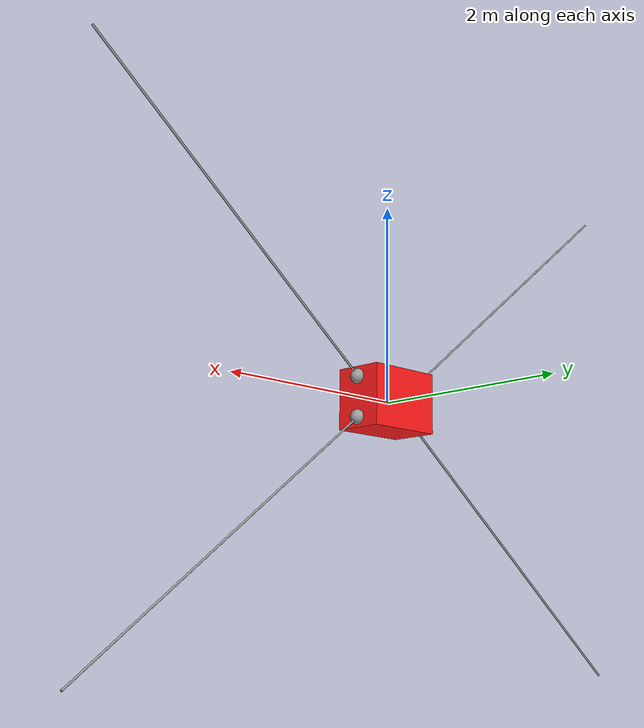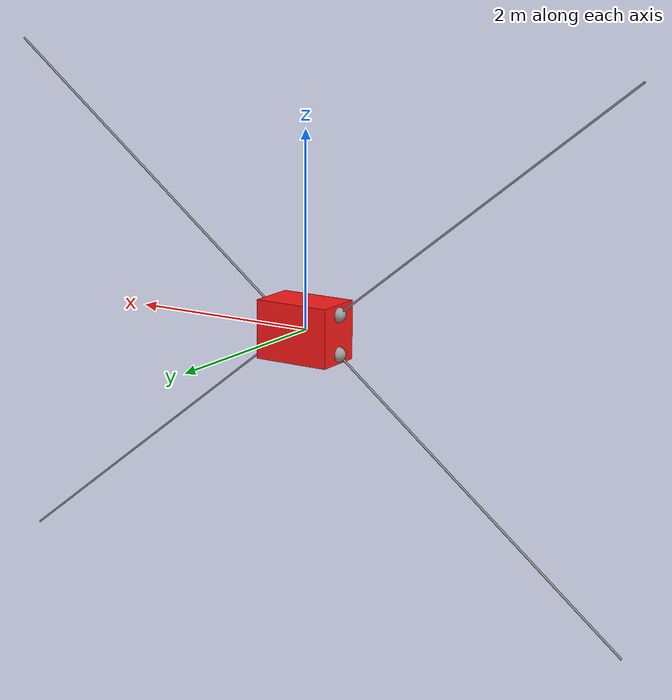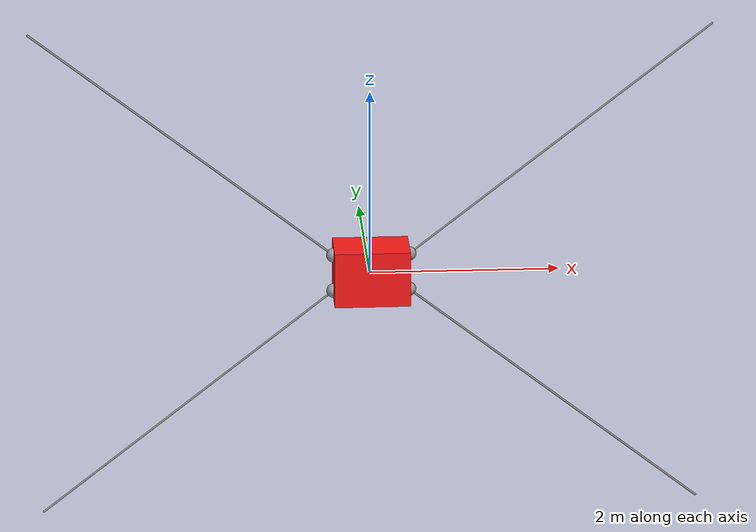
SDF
<?xml version='1.0'?>
<sdf version='1.7'>
  <model name='Wallbot_V3_Robot'>
    <link name='link_0'>
      <inertial>
        <mass>1</mass>
        <inertia>
          <ixx>0.166667</ixx>
          <ixy>0</ixy>
          <ixz>0</ixz>
          <iyy>0.166667</iyy>
          <iyz>0</iyz>
          <izz>0.166667</izz>
        </inertia>
        <pose>0 0 0 0 -0 0</pose>
      </inertial>
      <pose>0.015 0 0.005 0 -0 0</pose>
      <gravity>0</gravity>
      <self_collide>0</self_collide>
      <kinematic>0</kinematic>
      <enable_wind>0</enable_wind>
      <visual name='visual'>
        <pose>0 0 0 0 -0 0</pose>
        <geometry>
          <box>
            <size>0.8 0.5 0.6</size>
          </box>
        </geometry>
        <material>
          <lighting>1</lighting>
          <script>
            <uri>file://media/materials/scripts/gazebo.material</uri>
            <name>Gazebo/Grey</name>
          </script>
          <shader type='pixel'>
            <normal_map>__default__</normal_map>
          </shader>
          <ambient>1 0.1 0.1 1</ambient>
          <diffuse>0.7 0.7 0.7 1</diffuse>
          <specular>0.01 0.01 0.01 1</specular>
          <emissive>0 0 0 1</emissive>
        </material>
        <transparency>0</transparency>
        <cast_shadows>1</cast_shadows>
      </visual>
      <collision name='collision'>
        <laser_retro>0</laser_retro>
        <max_contacts>10</max_contacts>
        <pose>0 0 0 0 -0 0</pose>
        <geometry>
          <box>
            <size>0.8 0.5 0.6</size>
          </box>
        </geometry>
        <surface>
          <friction>
            <ode>
              <mu>1</mu>
              <mu2>1</mu2>
              <fdir1>0 0 0</fdir1>
              <slip1>0</slip1>
              <slip2>0</slip2>
            </ode>
            <torsional>
              <coefficient>1</coefficient>
              <patch_radius>0</patch_radius>
              <surface_radius>0</surface_radius>
              <use_patch_radius>1</use_patch_radius>
              <ode>
                <slip>0</slip>
              </ode>
            </torsional>
          </friction>
          <bounce>
            <restitution_coefficient>0</restitution_coefficient>
            <threshold>1e+06</threshold>
          </bounce>
          <contact>
            <collide_without_contact>0</collide_without_contact>
            <collide_without_contact_bitmask>1</collide_without_contact_bitmask>
            <collide_bitmask>1</collide_bitmask>
            <ode>
              <soft_cfm>0</soft_cfm>
              <soft_erp>0.2</soft_erp>
              <kp>1e+13</kp>
              <kd>1</kd>
              <max_vel>0.01</max_vel>
              <min_depth>0</min_depth>
            </ode>
            <bullet>
              <split_impulse>1</split_impulse>
              <split_impulse_penetration_threshold>-0.01</split_impulse_penetration_threshold>
              <soft_cfm>0</soft_cfm>
              <soft_erp>0.2</soft_erp>
              <kp>1e+13</kp>
              <kd>1</kd>
            </bullet>
          </contact>
        </surface>
      </collision>
    </link>
    <link name='link_0_0'>
      <inertial>
        <mass>1</mass>
        <inertia>
          <ixx>0.145833</ixx>
          <ixy>0</ixy>
          <ixz>0</ixz>
          <iyy>0.145833</iyy>
          <iyz>0</iyz>
          <izz>0.125</izz>
        </inertia>
        <pose>0 0 -2 0 -0 0</pose>
      </inertial>
      <pose>0.415 0 0.205 3.14159 -0.901593 3.14159</pose>
      <gravity>0</gravity>
      <self_collide>0</self_collide>
      <kinematic>0</kinematic>
      <enable_wind>0</enable_wind>
      <visual name='visual'>
        <pose>0 0 -2 0 -0 0</pose>
        <geometry>
          <cylinder>
            <radius>0.01</radius>
            <length>4</length>
          </cylinder>
        </geometry>
        <material>
          <lighting>1</lighting>
          <script>
            <uri>file://media/materials/scripts/gazebo.material</uri>
            <name>Gazebo/Grey</name>
          </script>
          <shader type='pixel'>
            <normal_map>__default__</normal_map>
          </shader>
          <ambient>0.3 0.3 0.3 1</ambient>
          <diffuse>0.7 0.7 0.7 1</diffuse>
          <specular>0.01 0.01 0.01 1</specular>
          <emissive>0 0 0 1</emissive>
        </material>
        <transparency>0</transparency>
        <cast_shadows>1</cast_shadows>
      </visual>
      <collision name='collision'>
        <laser_retro>0</laser_retro>
        <max_contacts>10</max_contacts>
        <pose>0 0 -2 0 -0 0</pose>
        <geometry>
          <cylinder>
            <radius>0.01</radius>
            <length>4</length>
          </cylinder>
        </geometry>
        <surface>
          <friction>
            <ode>
              <mu>1</mu>
              <mu2>1</mu2>
              <fdir1>0 0 0</fdir1>
              <slip1>0</slip1>
              <slip2>0</slip2>
            </ode>
            <torsional>
              <coefficient>1</coefficient>
              <patch_radius>0</patch_radius>
              <surface_radius>0</surface_radius>
              <use_patch_radius>1</use_patch_radius>
              <ode>
                <slip>0</slip>
              </ode>
            </torsional>
          </friction>
          <bounce>
            <restitution_coefficient>0</restitution_coefficient>
            <threshold>1e+06</threshold>
          </bounce>
          <contact>
            <collide_without_contact>true</collide_without_contact>
            <collide_without_contact_bitmask>1</collide_without_contact_bitmask>
            <collide_bitmask>1</collide_bitmask>
            <ode>
              <soft_cfm>0</soft_cfm>
              <soft_erp>0.2</soft_erp>
              <kp>1e+13</kp>
              <kd>1</kd>
              <max_vel>0.01</max_vel>
              <min_depth>0</min_depth>
            </ode>
            <bullet>
              <split_impulse>1</split_impulse>
              <split_impulse_penetration_threshold>-0.01</split_impulse_penetration_threshold>
              <soft_cfm>0</soft_cfm>
              <soft_erp>0.2</soft_erp>
              <kp>1e+13</kp>
              <kd>1</kd>
            </bullet>
          </contact>
        </surface>
      </collision>
    </link>
    <link name='link_0_0_clone'>
      <inertial>
        <mass>1</mass>
        <inertia>
          <ixx>0.145833</ixx>
          <ixy>0</ixy>
          <ixz>0</ixz>
          <iyy>0.145833</iyy>
          <iyz>0</iyz>
          <izz>0.125</izz>
        </inertia>
        <pose>0 0 -2 0 -0 0</pose>
      </inertial>
      <pose>-0.385 0 0.205 -3.14159 0.9 -3.14159</pose>
      <gravity>0</gravity>
      <self_collide>0</self_collide>
      <kinematic>0</kinematic>
      <enable_wind>0</enable_wind>
      <visual name='visual_0'>
        <pose>0 0 -2 0 -0 0</pose>
        <geometry>
          <cylinder>
            <radius>0.01</radius>
            <length>4</length>
          </cylinder>
        </geometry>
        <material>
          <lighting>1</lighting>
          <script>
            <uri>file://media/materials/scripts/gazebo.material</uri>
            <name>Gazebo/Grey</name>
          </script>
          <shader type='pixel'>
            <normal_map>__default__</normal_map>
          </shader>
          <ambient>0.3 0.3 0.3 1</ambient>
          <diffuse>0.7 0.7 0.7 1</diffuse>
          <specular>0.01 0.01 0.01 1</specular>
          <emissive>0 0 0 1</emissive>
        </material>
        <transparency>0</transparency>
        <cast_shadows>1</cast_shadows>
      </visual>
      <collision name='collision'>
        <laser_retro>0</laser_retro>
        <max_contacts>10</max_contacts>
        <pose>0 0 -2 0 -0 0</pose>
        <geometry>
          <cylinder>
            <radius>0.01</radius>
            <length>4</length>
          </cylinder>
        </geometry>
        <surface>
          <friction>
            <ode>
              <mu>1</mu>
              <mu2>1</mu2>
              <fdir1>0 0 0</fdir1>
              <slip1>0</slip1>
              <slip2>0</slip2>
            </ode>
            <torsional>
              <coefficient>1</coefficient>
              <patch_radius>0</patch_radius>
              <surface_radius>0</surface_radius>
              <use_patch_radius>1</use_patch_radius>
              <ode>
                <slip>0</slip>
              </ode>
            </torsional>
          </friction>
          <bounce>
            <restitution_coefficient>0</restitution_coefficient>
            <threshold>1e+06</threshold>
          </bounce>
          <contact>
            <collide_without_contact>true</collide_without_contact>
            <collide_without_contact_bitmask>1</collide_without_contact_bitmask>
            <collide_bitmask>1</collide_bitmask>
            <ode>
              <soft_cfm>0</soft_cfm>
              <soft_erp>0.2</soft_erp>
              <kp>1e+13</kp>
              <kd>1</kd>
              <max_vel>0.01</max_vel>
              <min_depth>0</min_depth>
            </ode>
            <bullet>
              <split_impulse>1</split_impulse>
              <split_impulse_penetration_threshold>-0.01</split_impulse_penetration_threshold>
              <soft_cfm>0</soft_cfm>
              <soft_erp>0.2</soft_erp>
              <kp>1e+13</kp>
              <kd>1</kd>
            </bullet>
          </contact>
        </surface>
      </collision>
    </link>
    <link name='link_0_0_clone_0'>
      <inertial>
        <mass>1</mass>
        <inertia>
          <ixx>0.145833</ixx>
          <ixy>0</ixy>
          <ixz>0</ixz>
          <iyy>0.145833</iyy>
          <iyz>0</iyz>
          <izz>0.125</izz>
        </inertia>
        <pose>0 0 -2 0 -0 0</pose>
      </inertial>
      <pose>0.415 0 -0.195 1.1e-05 -0.9 -5e-06</pose>
      <gravity>0</gravity>
      <self_collide>0</self_collide>
      <kinematic>0</kinematic>
      <enable_wind>0</enable_wind>
      <visual name='visual_0'>
        <pose>0 0 -2 0 -0 0</pose>
        <geometry>
          <cylinder>
            <radius>0.01</radius>
            <length>4</length>
          </cylinder>
        </geometry>
        <material>
          <lighting>1</lighting>
          <script>
            <uri>file://media/materials/scripts/gazebo.material</uri>
            <name>Gazebo/Grey</name>
          </script>
          <shader type='pixel'>
            <normal_map>__default__</normal_map>
          </shader>
          <ambient>0.3 0.3 0.3 1</ambient>
          <diffuse>0.7 0.7 0.7 1</diffuse>
          <specular>0.01 0.01 0.01 1</specular>
          <emissive>0 0 0 1</emissive>
        </material>
        <transparency>0</transparency>
        <cast_shadows>1</cast_shadows>
      </visual>
      <collision name='collision'>
        <laser_retro>0</laser_retro>
        <max_contacts>10</max_contacts>
        <pose>0 0 -2 0 -0 0</pose>
        <geometry>
          <cylinder>
            <radius>0.01</radius>
            <length>4</length>
          </cylinder>
        </geometry>
        <surface>
          <friction>
            <ode>
              <mu>1</mu>
              <mu2>1</mu2>
              <fdir1>0 0 0</fdir1>
              <slip1>0</slip1>
              <slip2>0</slip2>
            </ode>
            <torsional>
              <coefficient>1</coefficient>
              <patch_radius>0</patch_radius>
              <surface_radius>0</surface_radius>
              <use_patch_radius>1</use_patch_radius>
              <ode>
                <slip>0</slip>
              </ode>
            </torsional>
          </friction>
          <bounce>
            <restitution_coefficient>0</restitution_coefficient>
            <threshold>1e+06</threshold>
          </bounce>
          <contact>
            <collide_without_contact>true</collide_without_contact>
            <collide_without_contact_bitmask>1</collide_without_contact_bitmask>
            <collide_bitmask>1</collide_bitmask>
            <ode>
              <soft_cfm>0</soft_cfm>
              <soft_erp>0.2</soft_erp>
              <kp>1e+13</kp>
              <kd>1</kd>
              <max_vel>0.01</max_vel>
              <min_depth>0</min_depth>
            </ode>
            <bullet>
              <split_impulse>1</split_impulse>
              <split_impulse_penetration_threshold>-0.01</split_impulse_penetration_threshold>
              <soft_cfm>0</soft_cfm>
              <soft_erp>0.2</soft_erp>
              <kp>1e+13</kp>
              <kd>1</kd>
            </bullet>
          </contact>
        </surface>
      </collision>
    </link>
    <link name='link_0_0_clone_1'>
      <inertial>
        <mass>1</mass>
        <inertia>
          <ixx>0.145833</ixx>
          <ixy>0</ixy>
          <ixz>0</ixz>
          <iyy>0.145833</iyy>
          <iyz>0</iyz>
          <izz>0.125</izz>
        </inertia>
        <pose>0 0 -2 0 -0 0</pose>
      </inertial>
      <pose>-0.385 0 -0.195 1.1e-05 0.9 -5e-06</pose>
      <gravity>0</gravity>
      <self_collide>0</self_collide>
      <kinematic>0</kinematic>
      <enable_wind>0</enable_wind>
      <visual name='visual_0'>
        <pose>0 0 -2 0 -0 0</pose>
        <geometry>
          <cylinder>
            <radius>0.01</radius>
            <length>4</length>
          </cylinder>
        </geometry>
        <material>
          <lighting>1</lighting>
          <script>
            <uri>file://media/materials/scripts/gazebo.material</uri>
            <name>Gazebo/Grey</name>
          </script>
          <shader type='pixel'>
            <normal_map>__default__</normal_map>
          </shader>
          <ambient>0.3 0.3 0.3 1</ambient>
          <diffuse>0.7 0.7 0.7 1</diffuse>
          <specular>0.01 0.01 0.01 1</specular>
          <emissive>0 0 0 1</emissive>
        </material>
        <transparency>0</transparency>
        <cast_shadows>1</cast_shadows>
      </visual>
      <collision name='collision'>
        <laser_retro>0</laser_retro>
        <max_contacts>10</max_contacts>
        <pose>0 0 -2 0 -0 0</pose>
        <geometry>
          <cylinder>
            <radius>0.01</radius>
            <length>4</length>
          </cylinder>
        </geometry>
        <surface>
          <friction>
            <ode>
              <mu>1</mu>
              <mu2>1</mu2>
              <fdir1>0 0 0</fdir1>
              <slip1>0</slip1>
              <slip2>0</slip2>
            </ode>
            <torsional>
              <coefficient>1</coefficient>
              <patch_radius>0</patch_radius>
              <surface_radius>0</surface_radius>
              <use_patch_radius>1</use_patch_radius>
              <ode>
                <slip>0</slip>
              </ode>
            </torsional>
          </friction>
          <bounce>
            <restitution_coefficient>0</restitution_coefficient>
            <threshold>1e+06</threshold>
          </bounce>
          <contact>
            <collide_without_contact>true</collide_without_contact>
            <collide_without_contact_bitmask>1</collide_without_contact_bitmask>
            <collide_bitmask>1</collide_bitmask>
            <ode>
              <soft_cfm>0</soft_cfm>
              <soft_erp>0.2</soft_erp>
              <kp>1e+13</kp>
              <kd>1</kd>
              <max_vel>0.01</max_vel>
              <min_depth>0</min_depth>
            </ode>
            <bullet>
              <split_impulse>1</split_impulse>
              <split_impulse_penetration_threshold>-0.01</split_impulse_penetration_threshold>
              <soft_cfm>0</soft_cfm>
              <soft_erp>0.2</soft_erp>
              <kp>1e+13</kp>
              <kd>1</kd>
            </bullet>
          </contact>
        </surface>
      </collision>
    </link>
    <link name='link_1'>
      <inertial>
        <mass>1</mass>
        <inertia>
          <ixx>0.1</ixx>
          <ixy>0</ixy>
          <ixz>0</ixz>
          <iyy>0.1</iyy>
          <iyz>0</iyz>
          <izz>0.1</izz>
        </inertia>
        <pose>0 0 0 0 -0 0</pose>
      </inertial>
      <pose>-0.385 0 0.205 0 -0 0</pose>
      <gravity>0</gravity>
      <self_collide>0</self_collide>
      <kinematic>0</kinematic>
      <enable_wind>0</enable_wind>
      <visual name='visual'>
        <pose>0 0 0 0 -0 0</pose>
        <geometry>
          <sphere>
            <radius>0.075</radius>
          </sphere>
        </geometry>
        <material>
          <lighting>1</lighting>
          <script>
            <uri>file://media/materials/scripts/gazebo.material</uri>
            <name>Gazebo/Grey</name>
          </script>
          <shader type='pixel'>
            <normal_map>__default__</normal_map>
          </shader>
          <ambient>0.3 0.3 0.3 1</ambient>
          <diffuse>0.7 0.7 0.7 1</diffuse>
          <specular>0.01 0.01 0.01 1</specular>
          <emissive>0 0 0 1</emissive>
        </material>
        <transparency>0</transparency>
        <cast_shadows>1</cast_shadows>
      </visual>
      <collision name='collision'>
        <laser_retro>0</laser_retro>
        <max_contacts>10</max_contacts>
        <pose>0 0 0 0 -0 0</pose>
        <geometry>
          <sphere>
            <radius>0.075</radius>
          </sphere>
        </geometry>
        <surface>
          <friction>
            <ode>
              <mu>1</mu>
              <mu2>1</mu2>
              <fdir1>0 0 0</fdir1>
              <slip1>0</slip1>
              <slip2>0</slip2>
            </ode>
            <torsional>
              <coefficient>1</coefficient>
              <patch_radius>0</patch_radius>
              <surface_radius>0</surface_radius>
              <use_patch_radius>1</use_patch_radius>
              <ode>
                <slip>0</slip>
              </ode>
            </torsional>
          </friction>
          <bounce>
            <restitution_coefficient>0</restitution_coefficient>
            <threshold>1e+06</threshold>
          </bounce>
          <contact>
            <collide_without_contact>0</collide_without_contact>
            <collide_without_contact_bitmask>1</collide_without_contact_bitmask>
            <collide_bitmask>1</collide_bitmask>
            <ode>
              <soft_cfm>0</soft_cfm>
              <soft_erp>0.2</soft_erp>
              <kp>1e+13</kp>
              <kd>1</kd>
              <max_vel>0.01</max_vel>
              <min_depth>0</min_depth>
            </ode>
            <bullet>
              <split_impulse>1</split_impulse>
              <split_impulse_penetration_threshold>-0.01</split_impulse_penetration_threshold>
              <soft_cfm>0</soft_cfm>
              <soft_erp>0.2</soft_erp>
              <kp>1e+13</kp>
              <kd>1</kd>
            </bullet>
          </contact>
        </surface>
      </collision>
    </link>
    <link name='link_1_0_clone'>
      <inertial>
        <mass>1</mass>
        <inertia>
          <ixx>0.1</ixx>
          <ixy>0</ixy>
          <ixz>0</ixz>
          <iyy>0.1</iyy>
          <iyz>0</iyz>
          <izz>0.1</izz>
        </inertia>
        <pose>0 0 0 0 -0 0</pose>
      </inertial>
      <pose>1.98363 -1e-05 1.44572 0 -0 0</pose>
      <gravity>0</gravity>
      <self_collide>0</self_collide>
      <kinematic>0</kinematic>
      <enable_wind>0</enable_wind>
      <visual name='visual'>
        <pose>0 0 0 0 -0 0</pose>
        <geometry>
          <sphere>
            <radius>0.01</radius>
          </sphere>
        </geometry>
        <material>
          <lighting>1</lighting>
          <script>
            <uri>file://media/materials/scripts/gazebo.material</uri>
            <name>Gazebo/Grey</name>
          </script>
          <shader type='pixel'>
            <normal_map>__default__</normal_map>
          </shader>
          <ambient>0.3 0.3 0.3 1</ambient>
          <diffuse>0.7 0.7 0.7 1</diffuse>
          <specular>0.01 0.01 0.01 1</specular>
          <emissive>0 0 0 1</emissive>
        </material>
        <transparency>0</transparency>
        <cast_shadows>1</cast_shadows>
      </visual>
      <collision name='collision'>
        <laser_retro>0</laser_retro>
        <max_contacts>10</max_contacts>
        <pose>0 0 0 0 -0 0</pose>
        <geometry>
          <sphere>
            <radius>0.01</radius>
          </sphere>
        </geometry>
        <surface>
          <friction>
            <ode>
              <mu>1</mu>
              <mu2>1</mu2>
              <fdir1>0 0 0</fdir1>
              <slip1>0</slip1>
              <slip2>0</slip2>
            </ode>
            <torsional>
              <coefficient>1</coefficient>
              <patch_radius>0</patch_radius>
              <surface_radius>0</surface_radius>
              <use_patch_radius>1</use_patch_radius>
              <ode>
                <slip>0</slip>
              </ode>
            </torsional>
          </friction>
          <bounce>
            <restitution_coefficient>0</restitution_coefficient>
            <threshold>1e+06</threshold>
          </bounce>
          <contact>
            <collide_without_contact>0</collide_without_contact>
            <collide_without_contact_bitmask>1</collide_without_contact_bitmask>
            <collide_bitmask>1</collide_bitmask>
            <ode>
              <soft_cfm>0</soft_cfm>
              <soft_erp>0.2</soft_erp>
              <kp>1e+13</kp>
              <kd>1</kd>
              <max_vel>0.01</max_vel>
              <min_depth>0</min_depth>
            </ode>
            <bullet>
              <split_impulse>1</split_impulse>
              <split_impulse_penetration_threshold>-0.01</split_impulse_penetration_threshold>
              <soft_cfm>0</soft_cfm>
              <soft_erp>0.2</soft_erp>
              <kp>1e+13</kp>
              <kd>1</kd>
            </bullet>
          </contact>
        </surface>
      </collision>
    </link>
    <link name='link_1_0_clone_0'>
      <inertial>
        <mass>1</mass>
        <inertia>
          <ixx>0.1</ixx>
          <ixy>0</ixy>
          <ixz>0</ixz>
          <iyy>0.1</iyy>
          <iyz>0</iyz>
          <izz>0.1</izz>
        </inertia>
        <pose>0 0 0 0 -0 0</pose>
      </inertial>
      <pose>1.98165 1.4e-05 -1.43822 1.1e-05 -0.9 -5e-06</pose>
      <gravity>0</gravity>
      <self_collide>0</self_collide>
      <kinematic>0</kinematic>
      <enable_wind>0</enable_wind>
      <visual name='visual'>
        <pose>0 0 0 0 -0 0</pose>
        <geometry>
          <sphere>
            <radius>0.01</radius>
          </sphere>
        </geometry>
        <material>
          <lighting>1</lighting>
          <script>
            <uri>file://media/materials/scripts/gazebo.material</uri>
            <name>Gazebo/Grey</name>
          </script>
          <shader type='pixel'>
            <normal_map>__default__</normal_map>
          </shader>
          <ambient>0.3 0.3 0.3 1</ambient>
          <diffuse>0.7 0.7 0.7 1</diffuse>
          <specular>0.01 0.01 0.01 1</specular>
          <emissive>0 0 0 1</emissive>
        </material>
        <transparency>0</transparency>
        <cast_shadows>1</cast_shadows>
      </visual>
      <collision name='collision'>
        <laser_retro>0</laser_retro>
        <max_contacts>10</max_contacts>
        <pose>0 0 0 0 -0 0</pose>
        <geometry>
          <sphere>
            <radius>0.01</radius>
          </sphere>
        </geometry>
        <surface>
          <friction>
            <ode>
              <mu>1</mu>
              <mu2>1</mu2>
              <fdir1>0 0 0</fdir1>
              <slip1>0</slip1>
              <slip2>0</slip2>
            </ode>
            <torsional>
              <coefficient>1</coefficient>
              <patch_radius>0</patch_radius>
              <surface_radius>0</surface_radius>
              <use_patch_radius>1</use_patch_radius>
              <ode>
                <slip>0</slip>
              </ode>
            </torsional>
          </friction>
          <bounce>
            <restitution_coefficient>0</restitution_coefficient>
            <threshold>1e+06</threshold>
          </bounce>
          <contact>
            <collide_without_contact>0</collide_without_contact>
            <collide_without_contact_bitmask>1</collide_without_contact_bitmask>
            <collide_bitmask>1</collide_bitmask>
            <ode>
              <soft_cfm>0</soft_cfm>
              <soft_erp>0.2</soft_erp>
              <kp>1e+13</kp>
              <kd>1</kd>
              <max_vel>0.01</max_vel>
              <min_depth>0</min_depth>
            </ode>
            <bullet>
              <split_impulse>1</split_impulse>
              <split_impulse_penetration_threshold>-0.01</split_impulse_penetration_threshold>
              <soft_cfm>0</soft_cfm>
              <soft_erp>0.2</soft_erp>
              <kp>1e+13</kp>
              <kd>1</kd>
            </bullet>
          </contact>
        </surface>
      </collision>
    </link>
    <link name='link_1_0_clone_1'>
      <inertial>
        <mass>1</mass>
        <inertia>
          <ixx>0.1</ixx>
          <ixy>0</ixy>
          <ixz>0</ixz>
          <iyy>0.1</iyy>
          <iyz>0</iyz>
          <izz>0.1</izz>
        </inertia>
        <pose>0 0 0 0 -0 0</pose>
      </inertial>
      <pose>-1.95165 3e-05 -1.43822 1.1e-05 0.9 -5e-06</pose>
      <gravity>0</gravity>
      <self_collide>0</self_collide>
      <kinematic>0</kinematic>
      <enable_wind>0</enable_wind>
      <visual name='visual'>
        <pose>0 0 0 0 -0 0</pose>
        <geometry>
          <sphere>
            <radius>0.01</radius>
          </sphere>
        </geometry>
        <material>
          <lighting>1</lighting>
          <script>
            <uri>file://media/materials/scripts/gazebo.material</uri>
            <name>Gazebo/Grey</name>
          </script>
          <shader type='pixel'>
            <normal_map>__default__</normal_map>
          </shader>
          <ambient>0.3 0.3 0.3 1</ambient>
          <diffuse>0.7 0.7 0.7 1</diffuse>
          <specular>0.01 0.01 0.01 1</specular>
          <emissive>0 0 0 1</emissive>
        </material>
        <transparency>0</transparency>
        <cast_shadows>1</cast_shadows>
      </visual>
      <collision name='collision'>
        <laser_retro>0</laser_retro>
        <max_contacts>10</max_contacts>
        <pose>0 0 0 0 -0 0</pose>
        <geometry>
          <sphere>
            <radius>0.01</radius>
          </sphere>
        </geometry>
        <surface>
          <friction>
            <ode>
              <mu>1</mu>
              <mu2>1</mu2>
              <fdir1>0 0 0</fdir1>
              <slip1>0</slip1>
              <slip2>0</slip2>
            </ode>
            <torsional>
              <coefficient>1</coefficient>
              <patch_radius>0</patch_radius>
              <surface_radius>0</surface_radius>
              <use_patch_radius>1</use_patch_radius>
              <ode>
                <slip>0</slip>
              </ode>
            </torsional>
          </friction>
          <bounce>
            <restitution_coefficient>0</restitution_coefficient>
            <threshold>1e+06</threshold>
          </bounce>
          <contact>
            <collide_without_contact>0</collide_without_contact>
            <collide_without_contact_bitmask>1</collide_without_contact_bitmask>
            <collide_bitmask>1</collide_bitmask>
            <ode>
              <soft_cfm>0</soft_cfm>
              <soft_erp>0.2</soft_erp>
              <kp>1e+13</kp>
              <kd>1</kd>
              <max_vel>0.01</max_vel>
              <min_depth>0</min_depth>
            </ode>
            <bullet>
              <split_impulse>1</split_impulse>
              <split_impulse_penetration_threshold>-0.01</split_impulse_penetration_threshold>
              <soft_cfm>0</soft_cfm>
              <soft_erp>0.2</soft_erp>
              <kp>1e+13</kp>
              <kd>1</kd>
            </bullet>
          </contact>
        </surface>
      </collision>
    </link>
    <link name='link_1_clone'>
      <inertial>
        <mass>1</mass>
        <inertia>
          <ixx>0.1</ixx>
          <ixy>0</ixy>
          <ixz>0</ixz>
          <iyy>0.1</iyy>
          <iyz>0</iyz>
          <izz>0.1</izz>
        </inertia>
        <pose>0 0 0 0 -0 0</pose>
      </inertial>
      <pose>0.415 0 0.205 0 -0 0</pose>
      <gravity>0</gravity>
      <self_collide>0</self_collide>
      <kinematic>0</kinematic>
      <enable_wind>0</enable_wind>
      <visual name='visual'>
        <pose>0 0 0 0 -0 0</pose>
        <geometry>
          <sphere>
            <radius>0.075</radius>
          </sphere>
        </geometry>
        <material>
          <lighting>1</lighting>
          <script>
            <uri>file://media/materials/scripts/gazebo.material</uri>
            <name>Gazebo/Grey</name>
          </script>
          <shader type='pixel'>
            <normal_map>__default__</normal_map>
          </shader>
          <ambient>0.3 0.3 0.3 1</ambient>
          <diffuse>0.7 0.7 0.7 1</diffuse>
          <specular>0.01 0.01 0.01 1</specular>
          <emissive>0 0 0 1</emissive>
        </material>
        <transparency>0</transparency>
        <cast_shadows>1</cast_shadows>
      </visual>
      <collision name='collision'>
        <laser_retro>0</laser_retro>
        <max_contacts>10</max_contacts>
        <pose>0 0 0 0 -0 0</pose>
        <geometry>
          <sphere>
            <radius>0.075</radius>
          </sphere>
        </geometry>
        <surface>
          <friction>
            <ode>
              <mu>1</mu>
              <mu2>1</mu2>
              <fdir1>0 0 0</fdir1>
              <slip1>0</slip1>
              <slip2>0</slip2>
            </ode>
            <torsional>
              <coefficient>1</coefficient>
              <patch_radius>0</patch_radius>
              <surface_radius>0</surface_radius>
              <use_patch_radius>1</use_patch_radius>
              <ode>
                <slip>0</slip>
              </ode>
            </torsional>
          </friction>
          <bounce>
            <restitution_coefficient>0</restitution_coefficient>
            <threshold>1e+06</threshold>
          </bounce>
          <contact>
            <collide_without_contact>0</collide_without_contact>
            <collide_without_contact_bitmask>1</collide_without_contact_bitmask>
            <collide_bitmask>1</collide_bitmask>
            <ode>
              <soft_cfm>0</soft_cfm>
              <soft_erp>0.2</soft_erp>
              <kp>1e+13</kp>
              <kd>1</kd>
              <max_vel>0.01</max_vel>
              <min_depth>0</min_depth>
            </ode>
            <bullet>
              <split_impulse>1</split_impulse>
              <split_impulse_penetration_threshold>-0.01</split_impulse_penetration_threshold>
              <soft_cfm>0</soft_cfm>
              <soft_erp>0.2</soft_erp>
              <kp>1e+13</kp>
              <kd>1</kd>
            </bullet>
          </contact>
        </surface>
      </collision>
    </link>
    <link name='link_1_clone_0'>
      <inertial>
        <mass>1</mass>
        <inertia>
          <ixx>0.1</ixx>
          <ixy>0</ixy>
          <ixz>0</ixz>
          <iyy>0.1</iyy>
          <iyz>0</iyz>
          <izz>0.1</izz>
        </inertia>
        <pose>0 0 0 0 -0 0</pose>
      </inertial>
      <pose>0.415 0 -0.195 0 -0 0</pose>
      <gravity>0</gravity>
      <self_collide>0</self_collide>
      <kinematic>0</kinematic>
      <enable_wind>0</enable_wind>
      <visual name='visual'>
        <pose>0 0 0 0 -0 0</pose>
        <geometry>
          <sphere>
            <radius>0.075</radius>
          </sphere>
        </geometry>
        <material>
          <lighting>1</lighting>
          <script>
            <uri>file://media/materials/scripts/gazebo.material</uri>
            <name>Gazebo/Grey</name>
          </script>
          <shader type='pixel'>
            <normal_map>__default__</normal_map>
          </shader>
          <ambient>0.3 0.3 0.3 1</ambient>
          <diffuse>0.7 0.7 0.7 1</diffuse>
          <specular>0.01 0.01 0.01 1</specular>
          <emissive>0 0 0 1</emissive>
        </material>
        <transparency>0</transparency>
        <cast_shadows>1</cast_shadows>
      </visual>
      <collision name='collision'>
        <laser_retro>0</laser_retro>
        <max_contacts>10</max_contacts>
        <pose>0 0 0 0 -0 0</pose>
        <geometry>
          <sphere>
            <radius>0.075</radius>
          </sphere>
        </geometry>
        <surface>
          <friction>
            <ode>
              <mu>1</mu>
              <mu2>1</mu2>
              <fdir1>0 0 0</fdir1>
              <slip1>0</slip1>
              <slip2>0</slip2>
            </ode>
            <torsional>
              <coefficient>1</coefficient>
              <patch_radius>0</patch_radius>
              <surface_radius>0</surface_radius>
              <use_patch_radius>1</use_patch_radius>
              <ode>
                <slip>0</slip>
              </ode>
            </torsional>
          </friction>
          <bounce>
            <restitution_coefficient>0</restitution_coefficient>
            <threshold>1e+06</threshold>
          </bounce>
          <contact>
            <collide_without_contact>0</collide_without_contact>
            <collide_without_contact_bitmask>1</collide_without_contact_bitmask>
            <collide_bitmask>1</collide_bitmask>
            <ode>
              <soft_cfm>0</soft_cfm>
              <soft_erp>0.2</soft_erp>
              <kp>1e+13</kp>
              <kd>1</kd>
              <max_vel>0.01</max_vel>
              <min_depth>0</min_depth>
            </ode>
            <bullet>
              <split_impulse>1</split_impulse>
              <split_impulse_penetration_threshold>-0.01</split_impulse_penetration_threshold>
              <soft_cfm>0</soft_cfm>
              <soft_erp>0.2</soft_erp>
              <kp>1e+13</kp>
              <kd>1</kd>
            </bullet>
          </contact>
        </surface>
      </collision>
    </link>
    <link name='link_1_clone_1'>
      <inertial>
        <mass>1</mass>
        <inertia>
          <ixx>0.1</ixx>
          <ixy>0</ixy>
          <ixz>0</ixz>
          <iyy>0.1</iyy>
          <iyz>0</iyz>
          <izz>0.1</izz>
        </inertia>
        <pose>0 0 0 0 -0 0</pose>
      </inertial>
      <pose>-0.385 0 -0.195 0 -0 0</pose>
      <gravity>0</gravity>
      <self_collide>0</self_collide>
      <kinematic>0</kinematic>
      <enable_wind>0</enable_wind>
      <visual name='visual'>
        <pose>0 0 0 0 -0 0</pose>
        <geometry>
          <sphere>
            <radius>0.075</radius>
          </sphere>
        </geometry>
        <material>
          <lighting>1</lighting>
          <script>
            <uri>file://media/materials/scripts/gazebo.material</uri>
            <name>Gazebo/Grey</name>
          </script>
          <shader type='pixel'>
            <normal_map>__default__</normal_map>
          </shader>
          <ambient>0.3 0.3 0.3 1</ambient>
          <diffuse>0.7 0.7 0.7 1</diffuse>
          <specular>0.01 0.01 0.01 1</specular>
          <emissive>0 0 0 1</emissive>
        </material>
        <transparency>0</transparency>
        <cast_shadows>1</cast_shadows>
      </visual>
      <collision name='collision'>
        <laser_retro>0</laser_retro>
        <max_contacts>10</max_contacts>
        <pose>0 0 0 0 -0 0</pose>
        <geometry>
          <sphere>
            <radius>0.075</radius>
          </sphere>
        </geometry>
        <surface>
          <friction>
            <ode>
              <mu>1</mu>
              <mu2>1</mu2>
              <fdir1>0 0 0</fdir1>
              <slip1>0</slip1>
              <slip2>0</slip2>
            </ode>
            <torsional>
              <coefficient>1</coefficient>
              <patch_radius>0</patch_radius>
              <surface_radius>0</surface_radius>
              <use_patch_radius>1</use_patch_radius>
              <ode>
                <slip>0</slip>
              </ode>
            </torsional>
          </friction>
          <bounce>
            <restitution_coefficient>0</restitution_coefficient>
            <threshold>1e+06</threshold>
          </bounce>
          <contact>
            <collide_without_contact>0</collide_without_contact>
            <collide_without_contact_bitmask>1</collide_without_contact_bitmask>
            <collide_bitmask>1</collide_bitmask>
            <ode>
              <soft_cfm>0</soft_cfm>
              <soft_erp>0.2</soft_erp>
              <kp>1e+13</kp>
              <kd>1</kd>
              <max_vel>0.01</max_vel>
              <min_depth>0</min_depth>
            </ode>
            <bullet>
              <split_impulse>1</split_impulse>
              <split_impulse_penetration_threshold>-0.01</split_impulse_penetration_threshold>
              <soft_cfm>0</soft_cfm>
              <soft_erp>0.2</soft_erp>
              <kp>1e+13</kp>
              <kd>1</kd>
            </bullet>
          </contact>
        </surface>
      </collision>
    </link>

    <joint name='link_0_JOINT_0' type='fixed'>
      <parent>link_0</parent>
      <child>link_1</child>
      <pose>0 0 0 0 -0 0</pose>
      <physics>
        <ode>
          <limit>
            <cfm>0</cfm>
            <erp>0.2</erp>
          </limit>
          <suspension>
            <cfm>0</cfm>
            <erp>0.2</erp>
          </suspension>
        </ode>
      </physics>
    </joint>
    <joint name='link_0_JOINT_1' type='fixed'>
      <parent>link_0</parent>
      <child>link_1_clone_1</child>
      <pose>0 0 0 0 -0 0</pose>
      <physics>
        <ode>
          <limit>
            <cfm>0</cfm>
            <erp>0.2</erp>
          </limit>
          <suspension>
            <cfm>0</cfm>
            <erp>0.2</erp>
          </suspension>
        </ode>
      </physics>
    </joint>
    <joint name='link_0_JOINT_2' type='fixed'>
      <parent>link_0</parent>
      <child>link_1_clone</child>
      <pose>0 0 0 0 -0 0</pose>
      <physics>
        <ode>
          <limit>
            <cfm>0</cfm>
            <erp>0.2</erp>
          </limit>
          <suspension>
            <cfm>0</cfm>
            <erp>0.2</erp>
          </suspension>
        </ode>
      </physics>
    </joint>
    <joint name='link_0_JOINT_3' type='fixed'>
      <parent>link_0</parent>
      <child>link_1_clone_0</child>
      <pose>0 0 0 0 -0 0</pose>
      <physics>
        <ode>
          <limit>
            <cfm>0</cfm>
            <erp>0.2</erp>
          </limit>
          <suspension>
            <cfm>0</cfm>
            <erp>0.2</erp>
          </suspension>
        </ode>
      </physics>
    </joint>
    <joint name='link_1_JOINT_2' type='ball'>
      <parent>link_1</parent>
      <child>link_0_0_clone</child>
      <pose>0 0 0 0 -0 0</pose>
      <physics>
        <ode>
          <limit>
            <cfm>0</cfm>
            <erp>0.2</erp>
          </limit>
          <suspension>
            <cfm>0</cfm>
            <erp>0.2</erp>
          </suspension>
        </ode>
      </physics>
    </joint>
    <joint name='link_1_clone_0_JOINT_4' type='ball'>
      <parent>link_1_clone_0</parent>
      <child>link_0_0_clone_0</child>
      <pose>0 0 0 0 -0 0</pose>
      <physics>
        <ode>
          <limit>
            <cfm>0</cfm>
            <erp>0.2</erp>
          </limit>
          <suspension>
            <cfm>0</cfm>
            <erp>0.2</erp>
          </suspension>
        </ode>
      </physics>
    </joint>
    <joint name='link_1_clone_1_JOINT_5' type='ball'>
      <parent>link_1_clone_1</parent>
      <child>link_0_0_clone_1</child>
      <pose>0 0 0 0 -0 0</pose>
      <physics>
        <ode>
          <limit>
            <cfm>0</cfm>
            <erp>0.2</erp>
          </limit>
          <suspension>
            <cfm>0</cfm>
            <erp>0.2</erp>
          </suspension>
        </ode>
      </physics>
    </joint>
    <joint name='link_1_clone_JOINT_1' type='ball'>
      <parent>link_1_clone</parent>
      <child>link_0_0</child>
      <pose>0 0 0 0 -0 0</pose>
      <physics>
        <ode>
          <limit>
            <cfm>0</cfm>
            <erp>0.2</erp>
          </limit>
          <suspension>
            <cfm>0</cfm>
            <erp>0.2</erp>
          </suspension>
        </ode>
      </physics>
    </joint>

    <plugin
      filename="ignition-gazebo-joint-trajectory-controller-system"
      name="ignition::gazebo::v6::systems::JointTrajectoryController">

      <topic>joint_position_cmd</topic>

      <joint>
        <name>Prismatic Joint Top Right</name>
        <initial_position>0</initial_position>
      </joint>

      <joint>
        <name>Prismatic Joint Top Left</name>
        <initial_position>0</initial_position>
      </joint>

      <joint>
        <name>Prismatic Joint Bottom Right</name>
        <initial_position>0</initial_position>
      </joint>

      <joint>
        <name>Prismatic Joint Bottom Left</name>
        <initial_position>0</initial_position>
      </joint>
    </plugin>
  </model>
</sdf>
